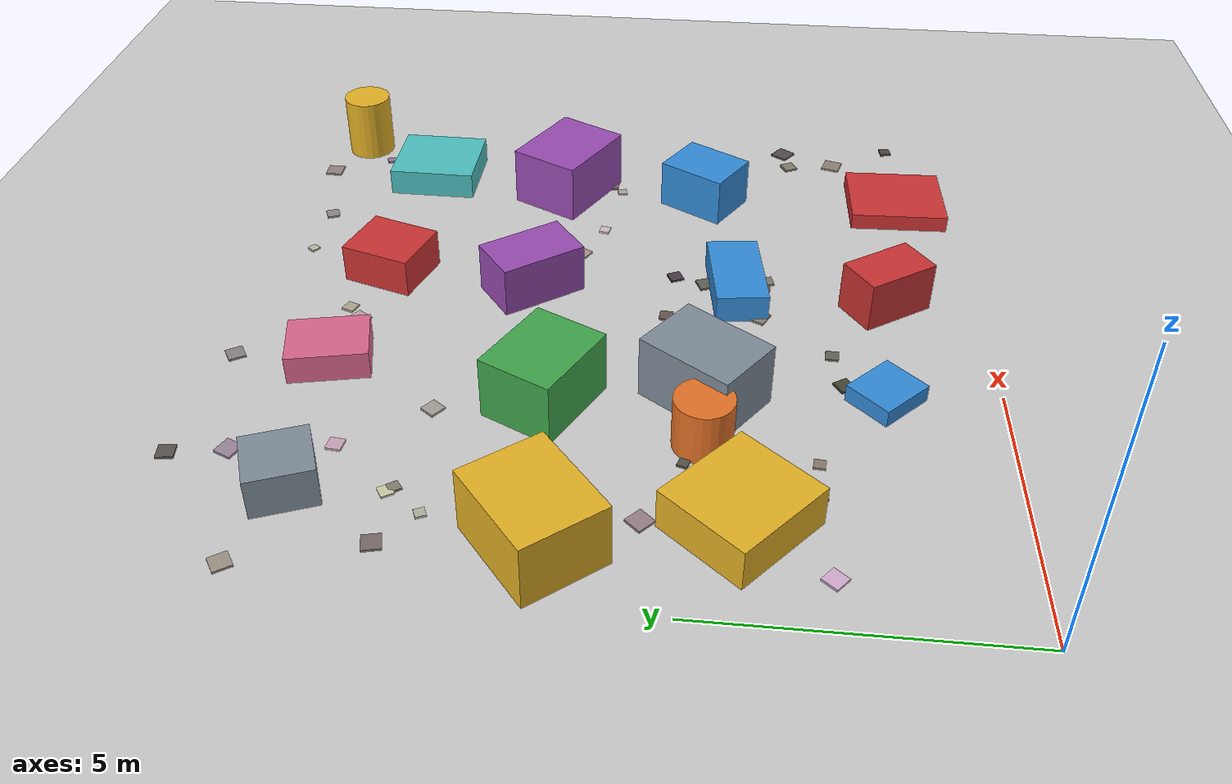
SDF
<sdf version="1.6">
 <world name="town_world">
  <model name="ground_plane">
   <static>true</static>
   <link name="link">
    <collision name="collision">
     <geometry><plane><normal>0 0 1</normal><size>60 60</size></plane></geometry>
     <surface><friction><ode><mu>1.0</mu><mu2>1.0</mu2></ode></friction></surface>
    </collision>
    <visual name="visual">
     <cast_shadows>false</cast_shadows>
     <geometry><plane><normal>0 0 1</normal><size>60 60</size></plane></geometry>
     <material>
      <script><uri>file://media/materials/scripts/gazebo.material</uri><name>Gazebo/CheckerBoard</name></script>
     </material>
    </visual>
   </link>
  </model>
  <model name="bld_33">
   <static>true</static>
   <pose>1.81 4.15 0.35 0 0 0.861</pose>
   <link name="l">
    <collision name="c"><geometry><box><size>1.63 1.78 0.70</size></box></geometry></collision>
    <visual name="v">
     <geometry><box><size>1.63 1.78 0.70</size></box></geometry>
     <material><ambient>0.9 0.7 0.15 1</ambient><diffuse>0.9 0.7 0.15 1</diffuse></material>
    </visual>
   </link>
  </model>
  <model name="bld_34">
   <static>true</static>
   <pose>1.13 7.01 0.55 0 0 0.681</pose>
   <link name="l">
    <collision name="c"><geometry><box><size>1.77 1.45 1.10</size></box></geometry></collision>
    <visual name="v">
     <geometry><box><size>1.77 1.45 1.10</size></box></geometry>
     <material><ambient>0.9 0.7 0.15 1</ambient><diffuse>0.9 0.7 0.15 1</diffuse></material>
    </visual>
   </link>
  </model>
  <model name="bld_35">
   <static>true</static>
   <pose>1.87 10.83 0.35 0 0 0.378</pose>
   <link name="l">
    <collision name="c"><geometry><box><size>1.01 1.05 0.70</size></box></geometry></collision>
    <visual name="v">
     <geometry><box><size>1.01 1.05 0.70</size></box></geometry>
     <material><ambient>0.5 0.55 0.6 1</ambient><diffuse>0.5 0.55 0.6 1</diffuse></material>
    </visual>
   </link>
  </model>
  <model name="bld_40">
   <static>true</static>
   <pose>4.78 1.88 0.15 0 0 0.797</pose>
   <link name="l">
    <collision name="c"><geometry><box><size>0.86 0.99 0.30</size></box></geometry></collision>
    <visual name="v">
     <geometry><box><size>0.86 0.99 0.30</size></box></geometry>
     <material><ambient>0.2 0.55 0.85 1</ambient><diffuse>0.2 0.55 0.85 1</diffuse></material>
    </visual>
   </link>
  </model>
  <model name="bld_41">
   <static>true</static>
   <pose>4.56 4.76 0.55 0 0 0.952</pose>
   <link name="l">
    <collision name="c"><geometry><box><size>1.71 1.24 1.10</size></box></geometry></collision>
    <visual name="v">
     <geometry><box><size>1.71 1.24 1.10</size></box></geometry>
     <material><ambient>0.5 0.55 0.6 1</ambient><diffuse>0.5 0.55 0.6 1</diffuse></material>
    </visual>
   </link>
  </model>
  <model name="bld_42">
   <static>true</static>
   <pose>4.20 7.28 0.55 0 0 1.098</pose>
   <link name="l">
    <collision name="c"><geometry><box><size>1.31 1.61 1.10</size></box></geometry></collision>
    <visual name="v">
     <geometry><box><size>1.31 1.61 1.10</size></box></geometry>
     <material><ambient>0.25 0.65 0.3 1</ambient><diffuse>0.25 0.65 0.3 1</diffuse></material>
    </visual>
   </link>
  </model>
  <model name="bld_43">
   <static>true</static>
   <pose>4.88 10.94 0.25 0 0 0.215</pose>
   <link name="l">
    <collision name="c"><geometry><box><size>1.06 1.36 0.50</size></box></geometry></collision>
    <visual name="v">
     <geometry><box><size>1.06 1.36 0.50</size></box></geometry>
     <material><ambient>0.85 0.4 0.55 1</ambient><diffuse>0.85 0.4 0.55 1</diffuse></material>
    </visual>
   </link>
  </model>
  <model name="bld_48">
   <static>true</static>
   <pose>7.32 1.72 0.45 0 0 0.603</pose>
   <link name="l">
    <collision name="c"><geometry><box><size>0.82 1.35 0.90</size></box></geometry></collision>
    <visual name="v">
     <geometry><box><size>0.82 1.35 0.90</size></box></geometry>
     <material><ambient>0.8 0.2 0.2 1</ambient><diffuse>0.8 0.2 0.2 1</diffuse></material>
    </visual>
   </link>
  </model>
  <model name="bld_49">
   <static>true</static>
   <pose>7.52 4.30 0.25 0 0 0.132</pose>
   <link name="l">
    <collision name="c"><geometry><box><size>1.76 0.91 0.50</size></box></geometry></collision>
    <visual name="v">
     <geometry><box><size>1.76 0.91 0.50</size></box></geometry>
     <material><ambient>0.2 0.55 0.85 1</ambient><diffuse>0.2 0.55 0.85 1</diffuse></material>
    </visual>
   </link>
  </model>
  <model name="bld_50">
   <static>true</static>
   <pose>7.27 7.91 0.45 0 0 0.637</pose>
   <link name="l">
    <collision name="c"><geometry><box><size>0.98 1.56 0.90</size></box></geometry></collision>
    <visual name="v">
     <geometry><box><size>0.98 1.56 0.90</size></box></geometry>
     <material><ambient>0.6 0.3 0.7 1</ambient><diffuse>0.6 0.3 0.7 1</diffuse></material>
    </visual>
   </link>
  </model>
  <model name="bld_51">
   <static>true</static>
   <pose>7.54 10.51 0.35 0 0 1.255</pose>
   <link name="l">
    <collision name="c"><geometry><box><size>1.29 1.13 0.70</size></box></geometry></collision>
    <visual name="v">
     <geometry><box><size>1.29 1.13 0.70</size></box></geometry>
     <material><ambient>0.8 0.2 0.2 1</ambient><diffuse>0.8 0.2 0.2 1</diffuse></material>
    </visual>
   </link>
  </model>
  <model name="bld_56">
   <static>true</static>
   <pose>10.67 1.27 0.15 0 0 0.029</pose>
   <link name="l">
    <collision name="c"><geometry><box><size>1.60 1.79 0.30</size></box></geometry></collision>
    <visual name="v">
     <geometry><box><size>1.60 1.79 0.30</size></box></geometry>
     <material><ambient>0.8 0.2 0.2 1</ambient><diffuse>0.8 0.2 0.2 1</diffuse></material>
    </visual>
   </link>
  </model>
  <model name="bld_57">
   <static>true</static>
   <pose>10.51 4.98 0.45 0 0 1.034</pose>
   <link name="l">
    <collision name="c"><geometry><box><size>1.31 1.05 0.90</size></box></geometry></collision>
    <visual name="v">
     <geometry><box><size>1.31 1.05 0.90</size></box></geometry>
     <material><ambient>0.2 0.55 0.85 1</ambient><diffuse>0.2 0.55 0.85 1</diffuse></material>
    </visual>
   </link>
  </model>
  <model name="bld_58">
   <static>true</static>
   <pose>10.65 7.66 0.55 0 0 1.080</pose>
   <link name="l">
    <collision name="c"><geometry><box><size>1.35 1.69 1.10</size></box></geometry></collision>
    <visual name="v">
     <geometry><box><size>1.35 1.69 1.10</size></box></geometry>
     <material><ambient>0.6 0.3 0.7 1</ambient><diffuse>0.6 0.3 0.7 1</diffuse></material>
    </visual>
   </link>
  </model>
  <model name="bld_59">
   <static>true</static>
   <pose>10.98 10.34 0.25 0 0 1.553</pose>
   <link name="l">
    <collision name="c"><geometry><box><size>1.63 1.51 0.50</size></box></geometry></collision>
    <visual name="v">
     <geometry><box><size>1.63 1.51 0.50</size></box></geometry>
     <material><ambient>0.3 0.75 0.75 1</ambient><diffuse>0.3 0.75 0.75 1</diffuse></material>
    </visual>
   </link>
  </model>
  <model name="landmark_2">
   <static>true</static>
   <pose>12.00 12.00 0.60 0 0 0</pose>
   <link name="l">
    <collision name="c">
     <geometry><cylinder><radius>0.45</radius><length>1.20</length></cylinder></geometry>
    </collision>
    <visual name="v">
     <geometry><cylinder><radius>0.45</radius><length>1.20</length></cylinder></geometry>
     <material><ambient>0.9 0.7 0.15 1</ambient><diffuse>0.9 0.7 0.15 1</diffuse></material>
    </visual>
   </link>
  </model>
  <model name="tank_0">
   <static>true</static>
   <pose>10.60 7.41 0.35 0 0 0</pose>
   <link name="l">
    <collision name="c">
     <geometry><cylinder><radius>0.30</radius><length>0.70</length></cylinder></geometry>
    </collision>
    <visual name="v">
     <geometry><cylinder><radius>0.30</radius><length>0.70</length></cylinder></geometry>
     <material><ambient>0.3 0.75 0.75 1</ambient><diffuse>0.3 0.75 0.75 1</diffuse></material>
    </visual>
   </link>
  </model>
  <model name="tank_2">
   <static>true</static>
   <pose>2.17 4.24 0.25 0 0 0</pose>
   <link name="l">
    <collision name="c">
     <geometry><cylinder><radius>0.31</radius><length>0.50</length></cylinder></geometry>
    </collision>
    <visual name="v">
     <geometry><cylinder><radius>0.31</radius><length>0.50</length></cylinder></geometry>
     <material><ambient>0.9 0.7 0.15 1</ambient><diffuse>0.9 0.7 0.15 1</diffuse></material>
    </visual>
   </link>
  </model>
  <model name="tank_9">
   <static>true</static>
   <pose>3.47 4.75 0.45 0 0 0</pose>
   <link name="l">
    <collision name="c">
     <geometry><cylinder><radius>0.48</radius><length>0.90</length></cylinder></geometry>
    </collision>
    <visual name="v">
     <geometry><cylinder><radius>0.48</radius><length>0.90</length></cylinder></geometry>
     <material><ambient>0.9 0.45 0.15 1</ambient><diffuse>0.9 0.45 0.15 1</diffuse></material>
    </visual>
   </link>
  </model>
  <model name="ft_8">
   <static>true</static>
   <pose>3.94 5.02 0.02 0 0 1.527</pose>
   <link name="l">
    <collision name="c"><geometry><box><size>0.27 0.27 0.04</size></box></geometry></collision>
    <visual name="v">
     <geometry><box><size>0.27 0.27 0.04</size></box></geometry>
     <material>
      <ambient>0.3300646052321905 0.2958976836511722 0.2961206323725841 1</ambient>
      <diffuse>0.3300646052321905 0.2958976836511722 0.2961206323725841 1</diffuse>
     </material>
    </visual>
   </link>
  </model>
  <model name="ft_10">
   <static>true</static>
   <pose>12.83 1.28 0.02 0 0 0.120</pose>
   <link name="l">
    <collision name="c"><geometry><box><size>0.21 0.21 0.04</size></box></geometry></collision>
    <visual name="v">
     <geometry><box><size>0.21 0.21 0.04</size></box></geometry>
     <material>
      <ambient>0.30151255698317736 0.2697298270147592 0.25867298229221747 1</ambient>
      <diffuse>0.30151255698317736 0.2697298270147592 0.25867298229221747 1</diffuse>
     </material>
    </visual>
   </link>
  </model>
  <model name="ft_29">
   <static>true</static>
   <pose>11.19 11.13 0.02 0 0 0.351</pose>
   <link name="l">
    <collision name="c"><geometry><box><size>0.26 0.26 0.04</size></box></geometry></collision>
    <visual name="v">
     <geometry><box><size>0.26 0.26 0.04</size></box></geometry>
     <material>
      <ambient>0.530890852088814 0.4723814157890406 0.5078615697820275 1</ambient>
      <diffuse>0.530890852088814 0.4723814157890406 0.5078615697820275 1</diffuse>
     </material>
    </visual>
   </link>
  </model>
  <model name="ft_32">
   <static>true</static>
   <pose>12.02 3.29 0.02 0 0 0.472</pose>
   <link name="l">
    <collision name="c"><geometry><box><size>0.26 0.26 0.04</size></box></geometry></collision>
    <visual name="v">
     <geometry><box><size>0.26 0.26 0.04</size></box></geometry>
     <material>
      <ambient>0.5124583171244647 0.48825430111477097 0.42015891510734477 1</ambient>
      <diffuse>0.5124583171244647 0.48825430111477097 0.42015891510734477 1</diffuse>
     </material>
    </visual>
   </link>
  </model>
  <model name="ft_39">
   <static>true</static>
   <pose>2.86 10.31 0.02 0 0 1.447</pose>
   <link name="l">
    <collision name="c"><geometry><box><size>0.25 0.25 0.04</size></box></geometry></collision>
    <visual name="v">
     <geometry><box><size>0.25 0.25 0.04</size></box></geometry>
     <material>
      <ambient>0.7962375998435657 0.6459743595343689 0.7317108494645137 1</ambient>
      <diffuse>0.7962375998435657 0.6459743595343689 0.7317108494645137 1</diffuse>
     </material>
    </visual>
   </link>
  </model>
  <model name="ft_48">
   <static>true</static>
   <pose>4.93 11.03 0.02 0 0 1.486</pose>
   <link name="l">
    <collision name="c"><geometry><box><size>0.21 0.21 0.04</size></box></geometry></collision>
    <visual name="v">
     <geometry><box><size>0.21 0.21 0.04</size></box></geometry>
     <material>
      <ambient>0.6829432416959957 0.6277024429303277 0.6563983787654685 1</ambient>
      <diffuse>0.6829432416959957 0.6277024429303277 0.6563983787654685 1</diffuse>
     </material>
    </visual>
   </link>
  </model>
  <model name="ft_50">
   <static>true</static>
   <pose>10.75 8.18 0.02 0 0 0.476</pose>
   <link name="l">
    <collision name="c"><geometry><box><size>0.18 0.18 0.04</size></box></geometry></collision>
    <visual name="v">
     <geometry><box><size>0.18 0.18 0.04</size></box></geometry>
     <material>
      <ambient>0.5479243644309307 0.43929344785069524 0.54036917090025 1</ambient>
      <diffuse>0.5479243644309307 0.43929344785069524 0.54036917090025 1</diffuse>
     </material>
    </visual>
   </link>
  </model>
  <model name="ft_54">
   <static>true</static>
   <pose>12.70 12.28 0.02 0 0 0.369</pose>
   <link name="l">
    <collision name="c"><geometry><box><size>0.18 0.18 0.04</size></box></geometry></collision>
    <visual name="v">
     <geometry><box><size>0.18 0.18 0.04</size></box></geometry>
     <material>
      <ambient>0.3297586966313748 0.2942056813531969 0.3225872732447674 1</ambient>
      <diffuse>0.3297586966313748 0.2942056813531969 0.3225872732447674 1</diffuse>
     </material>
    </visual>
   </link>
  </model>
  <model name="ft_55">
   <static>true</static>
   <pose>1.00 7.12 0.02 0 0 0.420</pose>
   <link name="l">
    <collision name="c"><geometry><box><size>0.30 0.30 0.04</size></box></geometry></collision>
    <visual name="v">
     <geometry><box><size>0.30 0.30 0.04</size></box></geometry>
     <material>
      <ambient>0.7178503550926052 0.6164788899888708 0.6143933183883249 1</ambient>
      <diffuse>0.7178503550926052 0.6164788899888708 0.6143933183883249 1</diffuse>
     </material>
    </visual>
   </link>
  </model>
  <model name="ft_62">
   <static>true</static>
   <pose>6.04 10.76 0.02 0 0 0.975</pose>
   <link name="l">
    <collision name="c"><geometry><box><size>0.31 0.31 0.04</size></box></geometry></collision>
    <visual name="v">
     <geometry><box><size>0.31 0.31 0.04</size></box></geometry>
     <material>
      <ambient>0.7412998646225746 0.6536774638761262 0.6481643203742109 1</ambient>
      <diffuse>0.7412998646225746 0.6536774638761262 0.6481643203742109 1</diffuse>
     </material>
    </visual>
   </link>
  </model>
  <model name="ft_66">
   <static>true</static>
   <pose>7.86 3.76 0.02 0 0 0.246</pose>
   <link name="l">
    <collision name="c"><geometry><box><size>0.23 0.23 0.04</size></box></geometry></collision>
    <visual name="v">
     <geometry><box><size>0.23 0.23 0.04</size></box></geometry>
     <material>
      <ambient>0.49298406483382207 0.48726420837070017 0.4371944615226178 1</ambient>
      <diffuse>0.49298406483382207 0.48726420837070017 0.4371944615226178 1</diffuse>
     </material>
    </visual>
   </link>
  </model>
  <model name="ft_72">
   <static>true</static>
   <pose>3.15 2.98 0.02 0 0 1.474</pose>
   <link name="l">
    <collision name="c"><geometry><box><size>0.19 0.19 0.04</size></box></geometry></collision>
    <visual name="v">
     <geometry><box><size>0.19 0.19 0.04</size></box></geometry>
     <material>
      <ambient>0.5337731235457905 0.48738047539421897 0.43147150940814777 1</ambient>
      <diffuse>0.5337731235457905 0.48738047539421897 0.43147150940814777 1</diffuse>
     </material>
    </visual>
   </link>
  </model>
  <model name="ft_74">
   <static>true</static>
   <pose>8.90 4.48 0.02 0 0 1.333</pose>
   <link name="l">
    <collision name="c"><geometry><box><size>0.28 0.28 0.04</size></box></geometry></collision>
    <visual name="v">
     <geometry><box><size>0.28 0.28 0.04</size></box></geometry>
     <material>
      <ambient>0.4445216795104638 0.39027550026022084 0.39613402751359966 1</ambient>
      <diffuse>0.4445216795104638 0.39027550026022084 0.39613402751359966 1</diffuse>
     </material>
    </visual>
   </link>
  </model>
  <model name="ft_75">
   <static>true</static>
   <pose>7.23 3.87 0.02 0 0 0.791</pose>
   <link name="l">
    <collision name="c"><geometry><box><size>0.21 0.21 0.04</size></box></geometry></collision>
    <visual name="v">
     <geometry><box><size>0.21 0.21 0.04</size></box></geometry>
     <material>
      <ambient>0.3995553095299296 0.3507465962018628 0.3490075680912423 1</ambient>
      <diffuse>0.3995553095299296 0.3507465962018628 0.3490075680912423 1</diffuse>
     </material>
    </visual>
   </link>
  </model>
  <model name="ft_77">
   <static>true</static>
   <pose>8.75 8.07 0.02 0 0 1.260</pose>
   <link name="l">
    <collision name="c"><geometry><box><size>0.23 0.23 0.04</size></box></geometry></collision>
    <visual name="v">
     <geometry><box><size>0.23 0.23 0.04</size></box></geometry>
     <material>
      <ambient>0.2902723943969125 0.2530348044397071 0.25342709259936047 1</ambient>
      <diffuse>0.2902723943969125 0.2530348044397071 0.25342709259936047 1</diffuse>
     </material>
    </visual>
   </link>
  </model>
  <model name="ft_80">
   <static>true</static>
   <pose>2.97 5.01 0.02 0 0 1.273</pose>
   <link name="l">
    <collision name="c"><geometry><box><size>0.17 0.17 0.04</size></box></geometry></collision>
    <visual name="v">
     <geometry><box><size>0.17 0.17 0.04</size></box></geometry>
     <material>
      <ambient>0.3289704873341087 0.3214498895382577 0.2821172997556254 1</ambient>
      <diffuse>0.3289704873341087 0.3214498895382577 0.2821172997556254 1</diffuse>
     </material>
    </visual>
   </link>
  </model>
  <model name="ft_81">
   <static>true</static>
   <pose>7.67 4.84 0.02 0 0 0.396</pose>
   <link name="l">
    <collision name="c"><geometry><box><size>0.29 0.29 0.04</size></box></geometry></collision>
    <visual name="v">
     <geometry><box><size>0.29 0.29 0.04</size></box></geometry>
     <material>
      <ambient>0.3826760682412216 0.36989744915277917 0.3528613655960204 1</ambient>
      <diffuse>0.3826760682412216 0.36989744915277917 0.3528613655960204 1</diffuse>
     </material>
    </visual>
   </link>
  </model>
  <model name="ft_83">
   <static>true</static>
   <pose>2.39 3.01 0.02 0 0 0.999</pose>
   <link name="l">
    <collision name="c"><geometry><box><size>0.20 0.20 0.04</size></box></geometry></collision>
    <visual name="v">
     <geometry><box><size>0.20 0.20 0.04</size></box></geometry>
     <material>
      <ambient>0.47336016909852496 0.39752239309470566 0.4168850301020424 1</ambient>
      <diffuse>0.47336016909852496 0.39752239309470566 0.4168850301020424 1</diffuse>
     </material>
    </visual>
   </link>
  </model>
  <model name="ft_85">
   <static>true</static>
   <pose>9.32 12.12 0.02 0 0 0.396</pose>
   <link name="l">
    <collision name="c"><geometry><box><size>0.24 0.24 0.04</size></box></geometry></collision>
    <visual name="v">
     <geometry><box><size>0.24 0.24 0.04</size></box></geometry>
     <material>
      <ambient>0.5628715079130695 0.5278303600214163 0.551175157955759 1</ambient>
      <diffuse>0.5628715079130695 0.5278303600214163 0.551175157955759 1</diffuse>
     </material>
    </visual>
   </link>
  </model>
  <model name="ft_86">
   <static>true</static>
   <pose>0.93 9.27 0.02 0 0 0.230</pose>
   <link name="l">
    <collision name="c"><geometry><box><size>0.30 0.30 0.04</size></box></geometry></collision>
    <visual name="v">
     <geometry><box><size>0.30 0.30 0.04</size></box></geometry>
     <material>
      <ambient>0.47287973283866397 0.4138397319092146 0.41319705949607405 1</ambient>
      <diffuse>0.47287973283866397 0.4138397319092146 0.41319705949607405 1</diffuse>
     </material>
    </visual>
   </link>
  </model>
  <model name="ft_92">
   <static>true</static>
   <pose>7.84 5.39 0.02 0 0 0.424</pose>
   <link name="l">
    <collision name="c"><geometry><box><size>0.24 0.24 0.04</size></box></geometry></collision>
    <visual name="v">
     <geometry><box><size>0.24 0.24 0.04</size></box></geometry>
     <material>
      <ambient>0.28820118593369465 0.2389010086328637 0.26891894225507224 1</ambient>
      <diffuse>0.28820118593369465 0.2389010086328637 0.26891894225507224 1</diffuse>
     </material>
    </visual>
   </link>
  </model>
  <model name="ft_93">
   <static>true</static>
   <pose>8.10 12.15 0.02 0 0 0.908</pose>
   <link name="l">
    <collision name="c"><geometry><box><size>0.16 0.16 0.04</size></box></geometry></collision>
    <visual name="v">
     <geometry><box><size>0.16 0.16 0.04</size></box></geometry>
     <material>
      <ambient>0.7425284112796091 0.7265902701890624 0.6823426617636514 1</ambient>
      <diffuse>0.7425284112796091 0.7265902701890624 0.6823426617636514 1</diffuse>
     </material>
    </visual>
   </link>
  </model>
  <model name="ft_100">
   <static>true</static>
   <pose>3.53 4.66 0.02 0 0 1.458</pose>
   <link name="l">
    <collision name="c"><geometry><box><size>0.29 0.29 0.04</size></box></geometry></collision>
    <visual name="v">
     <geometry><box><size>0.29 0.29 0.04</size></box></geometry>
     <material>
      <ambient>0.8003651165511219 0.7958657412724849 0.6876123984361107 1</ambient>
      <diffuse>0.8003651165511219 0.7958657412724849 0.6876123984361107 1</diffuse>
     </material>
    </visual>
   </link>
  </model>
  <model name="ft_103">
   <static>true</static>
   <pose>10.96 12.52 0.02 0 0 0.010</pose>
   <link name="l">
    <collision name="c"><geometry><box><size>0.32 0.32 0.04</size></box></geometry></collision>
    <visual name="v">
     <geometry><box><size>0.32 0.32 0.04</size></box></geometry>
     <material>
      <ambient>0.5718135541803819 0.5114461130632407 0.5181337888784106 1</ambient>
      <diffuse>0.5718135541803819 0.5114461130632407 0.5181337888784106 1</diffuse>
     </material>
    </visual>
   </link>
  </model>
  <model name="ft_107">
   <static>true</static>
   <pose>9.27 6.81 0.02 0 0 1.381</pose>
   <link name="l">
    <collision name="c"><geometry><box><size>0.19 0.19 0.04</size></box></geometry></collision>
    <visual name="v">
     <geometry><box><size>0.19 0.19 0.04</size></box></geometry>
     <material>
      <ambient>0.82274185785456 0.7460448993625599 0.7674805014020639 1</ambient>
      <diffuse>0.82274185785456 0.7460448993625599 0.7674805014020639 1</diffuse>
     </material>
    </visual>
   </link>
  </model>
  <model name="ft_108">
   <static>true</static>
   <pose>6.65 5.49 0.02 0 0 1.490</pose>
   <link name="l">
    <collision name="c"><geometry><box><size>0.23 0.23 0.04</size></box></geometry></collision>
    <visual name="v">
     <geometry><box><size>0.23 0.23 0.04</size></box></geometry>
     <material>
      <ambient>0.3979464391129765 0.3345265462820642 0.32105209424717307 1</ambient>
      <diffuse>0.3979464391129765 0.3345265462820642 0.32105209424717307 1</diffuse>
     </material>
    </visual>
   </link>
  </model>
  <model name="ft_109">
   <static>true</static>
   <pose>10.69 6.60 0.02 0 0 0.208</pose>
   <link name="l">
    <collision name="c"><geometry><box><size>0.17 0.17 0.04</size></box></geometry></collision>
    <visual name="v">
     <geometry><box><size>0.17 0.17 0.04</size></box></geometry>
     <material>
      <ambient>0.700855855486705 0.6493091999778294 0.6275625005243903 1</ambient>
      <diffuse>0.700855855486705 0.6493091999778294 0.6275625005243903 1</diffuse>
     </material>
    </visual>
   </link>
  </model>
  <model name="ft_110">
   <static>true</static>
   <pose>7.59 3.80 0.02 0 0 1.460</pose>
   <link name="l">
    <collision name="c"><geometry><box><size>0.21 0.21 0.04</size></box></geometry></collision>
    <visual name="v">
     <geometry><box><size>0.21 0.21 0.04</size></box></geometry>
     <material>
      <ambient>0.4519094858635904 0.38513169005863696 0.3932426688000338 1</ambient>
      <diffuse>0.4519094858635904 0.38513169005863696 0.3932426688000338 1</diffuse>
     </material>
    </visual>
   </link>
  </model>
  <model name="ft_112">
   <static>true</static>
   <pose>6.39 7.52 0.02 0 0 0.076</pose>
   <link name="l">
    <collision name="c"><geometry><box><size>0.16 0.16 0.04</size></box></geometry></collision>
    <visual name="v">
     <geometry><box><size>0.16 0.16 0.04</size></box></geometry>
     <material>
      <ambient>0.5611734201298322 0.4599713509258126 0.5015702564240914 1</ambient>
      <diffuse>0.5611734201298322 0.4599713509258126 0.5015702564240914 1</diffuse>
     </material>
    </visual>
   </link>
  </model>
  <model name="ft_113">
   <static>true</static>
   <pose>1.72 5.57 0.02 0 0 0.822</pose>
   <link name="l">
    <collision name="c"><geometry><box><size>0.32 0.32 0.04</size></box></geometry></collision>
    <visual name="v">
     <geometry><box><size>0.32 0.32 0.04</size></box></geometry>
     <material>
      <ambient>0.5947245470574997 0.5099298727321055 0.5276464557748131 1</ambient>
      <diffuse>0.5947245470574997 0.5099298727321055 0.5276464557748131 1</diffuse>
     </material>
    </visual>
   </link>
  </model>
  <model name="ft_115">
   <static>true</static>
   <pose>12.15 2.41 0.02 0 0 1.280</pose>
   <link name="l">
    <collision name="c"><geometry><box><size>0.34 0.34 0.04</size></box></geometry></collision>
    <visual name="v">
     <geometry><box><size>0.34 0.34 0.04</size></box></geometry>
     <material>
      <ambient>0.5590841603006798 0.5118982837400068 0.4650345040871043 1</ambient>
      <diffuse>0.5590841603006798 0.5118982837400068 0.4650345040871043 1</diffuse>
     </material>
    </visual>
   </link>
  </model>
  <model name="ft_119">
   <static>true</static>
   <pose>12.54 3.40 0.02 0 0 0.950</pose>
   <link name="l">
    <collision name="c"><geometry><box><size>0.34 0.34 0.04</size></box></geometry></collision>
    <visual name="v">
     <geometry><box><size>0.34 0.34 0.04</size></box></geometry>
     <material>
      <ambient>0.32612831383143925 0.2996524570401535 0.30585844664629724 1</ambient>
      <diffuse>0.32612831383143925 0.2996524570401535 0.30585844664629724 1</diffuse>
     </material>
    </visual>
   </link>
  </model>
  <model name="ft_123">
   <static>true</static>
   <pose>5.80 2.68 0.02 0 0 1.499</pose>
   <link name="l">
    <collision name="c"><geometry><box><size>0.22 0.22 0.04</size></box></geometry></collision>
    <visual name="v">
     <geometry><box><size>0.22 0.22 0.04</size></box></geometry>
     <material>
      <ambient>0.39172783193621813 0.38826442541322076 0.3336493364751996 1</ambient>
      <diffuse>0.39172783193621813 0.38826442541322076 0.3336493364751996 1</diffuse>
     </material>
    </visual>
   </link>
  </model>
  <model name="ft_128">
   <static>true</static>
   <pose>3.83 9.00 0.02 0 0 0.917</pose>
   <link name="l">
    <collision name="c"><geometry><box><size>0.28 0.28 0.04</size></box></geometry></collision>
    <visual name="v">
     <geometry><box><size>0.28 0.28 0.04</size></box></geometry>
     <material>
      <ambient>0.6414911279681796 0.6257883272169042 0.595520891690757 1</ambient>
      <diffuse>0.6414911279681796 0.6257883272169042 0.595520891690757 1</diffuse>
     </material>
    </visual>
   </link>
  </model>
  <model name="ft_132">
   <static>true</static>
   <pose>8.63 10.61 0.02 0 0 1.494</pose>
   <link name="l">
    <collision name="c"><geometry><box><size>0.17 0.17 0.04</size></box></geometry></collision>
    <visual name="v">
     <geometry><box><size>0.17 0.17 0.04</size></box></geometry>
     <material>
      <ambient>0.40073386375617936 0.3380495890316915 0.37798949827042577 1</ambient>
      <diffuse>0.40073386375617936 0.3380495890316915 0.37798949827042577 1</diffuse>
     </material>
    </visual>
   </link>
  </model>
  <model name="ft_135">
   <static>true</static>
   <pose>0.36 11.25 0.02 0 0 0.599</pose>
   <link name="l">
    <collision name="c"><geometry><box><size>0.30 0.30 0.04</size></box></geometry></collision>
    <visual name="v">
     <geometry><box><size>0.30 0.30 0.04</size></box></geometry>
     <material>
      <ambient>0.6184013740217968 0.5735757847848029 0.5259451391085479 1</ambient>
      <diffuse>0.6184013740217968 0.5735757847848029 0.5259451391085479 1</diffuse>
     </material>
    </visual>
   </link>
  </model>
  <model name="ft_140">
   <static>true</static>
   <pose>6.76 3.89 0.02 0 0 1.106</pose>
   <link name="l">
    <collision name="c"><geometry><box><size>0.31 0.31 0.04</size></box></geometry></collision>
    <visual name="v">
     <geometry><box><size>0.31 0.31 0.04</size></box></geometry>
     <material>
      <ambient>0.5316409737828947 0.5086308578226367 0.4498165296741817 1</ambient>
      <diffuse>0.5316409737828947 0.5086308578226367 0.4498165296741817 1</diffuse>
     </material>
    </visual>
   </link>
  </model>
  <model name="ft_141">
   <static>true</static>
   <pose>4.87 12.56 0.02 0 0 0.562</pose>
   <link name="l">
    <collision name="c"><geometry><box><size>0.29 0.29 0.04</size></box></geometry></collision>
    <visual name="v">
     <geometry><box><size>0.29 0.29 0.04</size></box></geometry>
     <material>
      <ambient>0.5389413908244447 0.517969733910277 0.5172665625482742 1</ambient>
      <diffuse>0.5389413908244447 0.517969733910277 0.5172665625482742 1</diffuse>
     </material>
    </visual>
   </link>
  </model>
  <model name="ft_145">
   <static>true</static>
   <pose>2.04 9.21 0.02 0 0 0.632</pose>
   <link name="l">
    <collision name="c"><geometry><box><size>0.19 0.19 0.04</size></box></geometry></collision>
    <visual name="v">
     <geometry><box><size>0.19 0.19 0.04</size></box></geometry>
     <material>
      <ambient>0.5211758658876005 0.4987533365773081 0.43867799117561473 1</ambient>
      <diffuse>0.5211758658876005 0.4987533365773081 0.43867799117561473 1</diffuse>
     </material>
    </visual>
   </link>
  </model>
  <model name="ft_146">
   <static>true</static>
   <pose>0.90 2.85 0.02 0 0 0.861</pose>
   <link name="l">
    <collision name="c"><geometry><box><size>0.29 0.29 0.04</size></box></geometry></collision>
    <visual name="v">
     <geometry><box><size>0.29 0.29 0.04</size></box></geometry>
     <material>
      <ambient>0.836304510152108 0.6841649645192485 0.8198531759835332 1</ambient>
      <diffuse>0.836304510152108 0.6841649645192485 0.8198531759835332 1</diffuse>
     </material>
    </visual>
   </link>
  </model>
  <model name="ft_149">
   <static>true</static>
   <pose>10.54 5.21 0.02 0 0 0.252</pose>
   <link name="l">
    <collision name="c"><geometry><box><size>0.20 0.20 0.04</size></box></geometry></collision>
    <visual name="v">
     <geometry><box><size>0.20 0.20 0.04</size></box></geometry>
     <material>
      <ambient>0.3487698325792374 0.3208404577626132 0.33025637110216355 1</ambient>
      <diffuse>0.3487698325792374 0.3208404577626132 0.33025637110216355 1</diffuse>
     </material>
    </visual>
   </link>
  </model>
  <model name="ft_152">
   <static>true</static>
   <pose>12.97 8.02 0.02 0 0 0.335</pose>
   <link name="l">
    <collision name="c"><geometry><box><size>0.17 0.17 0.04</size></box></geometry></collision>
    <visual name="v">
     <geometry><box><size>0.17 0.17 0.04</size></box></geometry>
     <material>
      <ambient>0.5405028320163885 0.5142529621884134 0.44802164840763165 1</ambient>
      <diffuse>0.5405028320163885 0.5142529621884134 0.44802164840763165 1</diffuse>
     </material>
    </visual>
   </link>
  </model>
  <model name="ft_163">
   <static>true</static>
   <pose>8.44 7.12 0.02 0 0 1.068</pose>
   <link name="l">
    <collision name="c"><geometry><box><size>0.23 0.23 0.04</size></box></geometry></collision>
    <visual name="v">
     <geometry><box><size>0.23 0.23 0.04</size></box></geometry>
     <material>
      <ambient>0.6674272846518293 0.5879565128045414 0.542914565323561 1</ambient>
      <diffuse>0.6674272846518293 0.5879565128045414 0.542914565323561 1</diffuse>
     </material>
    </visual>
   </link>
  </model>
  <model name="ft_164">
   <static>true</static>
   <pose>2.44 12.82 0.02 0 0 0.130</pose>
   <link name="l">
    <collision name="c"><geometry><box><size>0.28 0.28 0.04</size></box></geometry></collision>
    <visual name="v">
     <geometry><box><size>0.28 0.28 0.04</size></box></geometry>
     <material>
      <ambient>0.3431775874292034 0.327383638281034 0.31220960449162516 1</ambient>
      <diffuse>0.3431775874292034 0.327383638281034 0.31220960449162516 1</diffuse>
     </material>
    </visual>
   </link>
  </model>
  <model name="ft_167">
   <static>true</static>
   <pose>6.35 10.99 0.02 0 0 1.192</pose>
   <link name="l">
    <collision name="c"><geometry><box><size>0.22 0.22 0.04</size></box></geometry></collision>
    <visual name="v">
     <geometry><box><size>0.22 0.22 0.04</size></box></geometry>
     <material>
      <ambient>0.6983450891683343 0.6557240722724921 0.5789000834244407 1</ambient>
      <diffuse>0.6983450891683343 0.6557240722724921 0.5789000834244407 1</diffuse>
     </material>
    </visual>
   </link>
  </model>
  <model name="ft_170">
   <static>true</static>
   <pose>2.60 11.90 0.02 0 0 1.143</pose>
   <link name="l">
    <collision name="c"><geometry><box><size>0.32 0.32 0.04</size></box></geometry></collision>
    <visual name="v">
     <geometry><box><size>0.32 0.32 0.04</size></box></geometry>
     <material>
      <ambient>0.6153689208318844 0.5312208510938012 0.6090626155075403 1</ambient>
      <diffuse>0.6153689208318844 0.5312208510938012 0.6090626155075403 1</diffuse>
     </material>
    </visual>
   </link>
  </model>
  <model name="ft_173">
   <static>true</static>
   <pose>3.17 3.92 0.02 0 0 0.024</pose>
   <link name="l">
    <collision name="c"><geometry><box><size>0.31 0.31 0.04</size></box></geometry></collision>
    <visual name="v">
     <geometry><box><size>0.31 0.31 0.04</size></box></geometry>
     <material>
      <ambient>0.6099417179765105 0.5940293403477214 0.576481467582214 1</ambient>
      <diffuse>0.6099417179765105 0.5940293403477214 0.576481467582214 1</diffuse>
     </material>
    </visual>
   </link>
  </model>
  <model name="ft_176">
   <static>true</static>
   <pose>10.94 6.85 0.02 0 0 1.559</pose>
   <link name="l">
    <collision name="c"><geometry><box><size>0.31 0.31 0.04</size></box></geometry></collision>
    <visual name="v">
     <geometry><box><size>0.31 0.31 0.04</size></box></geometry>
     <material>
      <ambient>0.4231128670270635 0.35039412959484395 0.4138562131279639 1</ambient>
      <diffuse>0.4231128670270635 0.35039412959484395 0.4138562131279639 1</diffuse>
     </material>
    </visual>
   </link>
  </model>
  <model name="ft_188">
   <static>true</static>
   <pose>10.98 5.37 0.02 0 0 1.446</pose>
   <link name="l">
    <collision name="c"><geometry><box><size>0.17 0.17 0.04</size></box></geometry></collision>
    <visual name="v">
     <geometry><box><size>0.17 0.17 0.04</size></box></geometry>
     <material>
      <ambient>0.44122635080431183 0.37356057356690714 0.3609040278804108 1</ambient>
      <diffuse>0.44122635080431183 0.37356057356690714 0.3609040278804108 1</diffuse>
     </material>
    </visual>
   </link>
  </model>
  <model name="ft_190">
   <static>true</static>
   <pose>11.48 11.47 0.02 0 0 0.405</pose>
   <link name="l">
    <collision name="c"><geometry><box><size>0.16 0.16 0.04</size></box></geometry></collision>
    <visual name="v">
     <geometry><box><size>0.16 0.16 0.04</size></box></geometry>
     <material>
      <ambient>0.5817009608651948 0.46859339817942625 0.572290204510231 1</ambient>
      <diffuse>0.5817009608651948 0.46859339817942625 0.572290204510231 1</diffuse>
     </material>
    </visual>
   </link>
  </model>
  <model name="ft_200">
   <static>true</static>
   <pose>1.56 8.72 0.02 0 0 0.411</pose>
   <link name="l">
    <collision name="c"><geometry><box><size>0.17 0.17 0.04</size></box></geometry></collision>
    <visual name="v">
     <geometry><box><size>0.17 0.17 0.04</size></box></geometry>
     <material>
      <ambient>0.7029105106068633 0.6987914883170361 0.6230682397079838 1</ambient>
      <diffuse>0.7029105106068633 0.6987914883170361 0.6230682397079838 1</diffuse>
     </material>
    </visual>
   </link>
  </model>
  <model name="ft_205">
   <static>true</static>
   <pose>6.00 6.79 0.02 0 0 0.302</pose>
   <link name="l">
    <collision name="c"><geometry><box><size>0.19 0.19 0.04</size></box></geometry></collision>
    <visual name="v">
     <geometry><box><size>0.19 0.19 0.04</size></box></geometry>
     <material>
      <ambient>0.33222449695661654 0.31029100483591104 0.30753653946143666 1</ambient>
      <diffuse>0.33222449695661654 0.31029100483591104 0.30753653946143666 1</diffuse>
     </material>
    </visual>
   </link>
  </model>
  <model name="ft_209">
   <static>true</static>
   <pose>1.95 9.31 0.02 0 0 0.560</pose>
   <link name="l">
    <collision name="c"><geometry><box><size>0.22 0.22 0.04</size></box></geometry></collision>
    <visual name="v">
     <geometry><box><size>0.22 0.22 0.04</size></box></geometry>
     <material>
      <ambient>0.8092713465352388 0.8042109713360095 0.658964049501331 1</ambient>
      <diffuse>0.8092713465352388 0.8042109713360095 0.658964049501331 1</diffuse>
     </material>
    </visual>
   </link>
  </model>
  <model name="ft_215">
   <static>true</static>
   <pose>2.23 6.80 0.02 0 0 0.357</pose>
   <link name="l">
    <collision name="c"><geometry><box><size>0.17 0.17 0.04</size></box></geometry></collision>
    <visual name="v">
     <geometry><box><size>0.17 0.17 0.04</size></box></geometry>
     <material>
      <ambient>0.32292583170078926 0.31546223792691297 0.29331984233088876 1</ambient>
      <diffuse>0.32292583170078926 0.31546223792691297 0.29331984233088876 1</diffuse>
     </material>
    </visual>
   </link>
  </model>
  <model name="ft_217">
   <static>true</static>
   <pose>5.04 2.52 0.02 0 0 0.570</pose>
   <link name="l">
    <collision name="c"><geometry><box><size>0.27 0.27 0.04</size></box></geometry></collision>
    <visual name="v">
     <geometry><box><size>0.27 0.27 0.04</size></box></geometry>
     <material>
      <ambient>0.2717243659301108 0.27012074634179023 0.22020356478849415 1</ambient>
      <diffuse>0.2717243659301108 0.27012074634179023 0.22020356478849415 1</diffuse>
     </material>
    </visual>
   </link>
  </model>
 </world>
</sdf>
